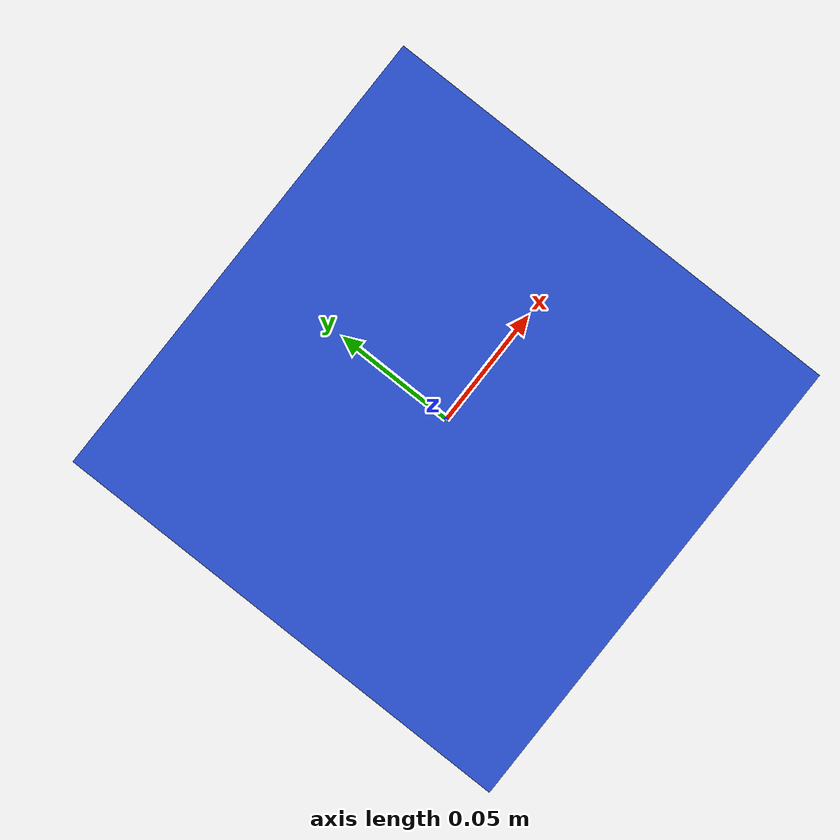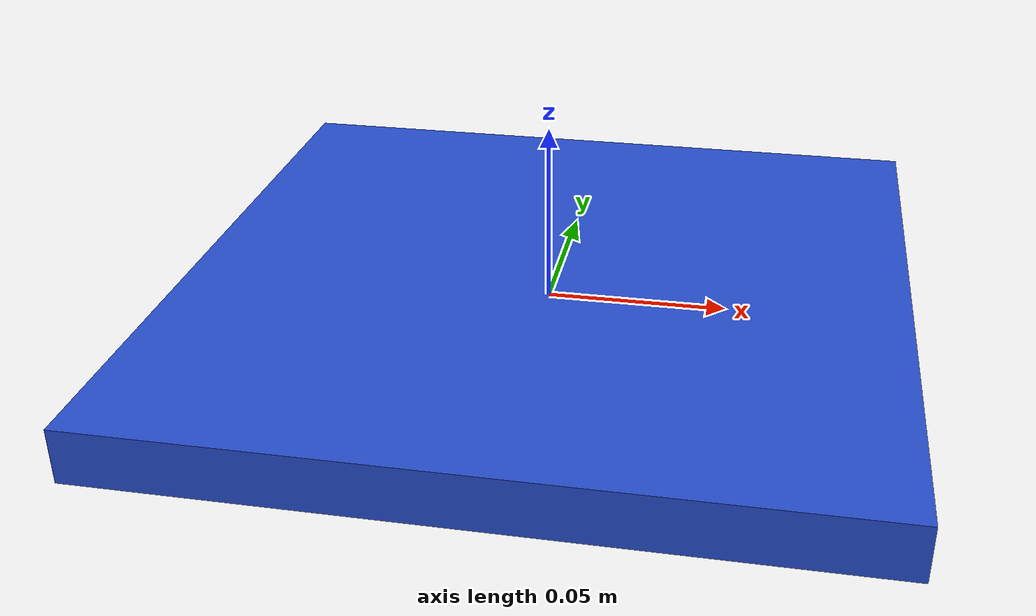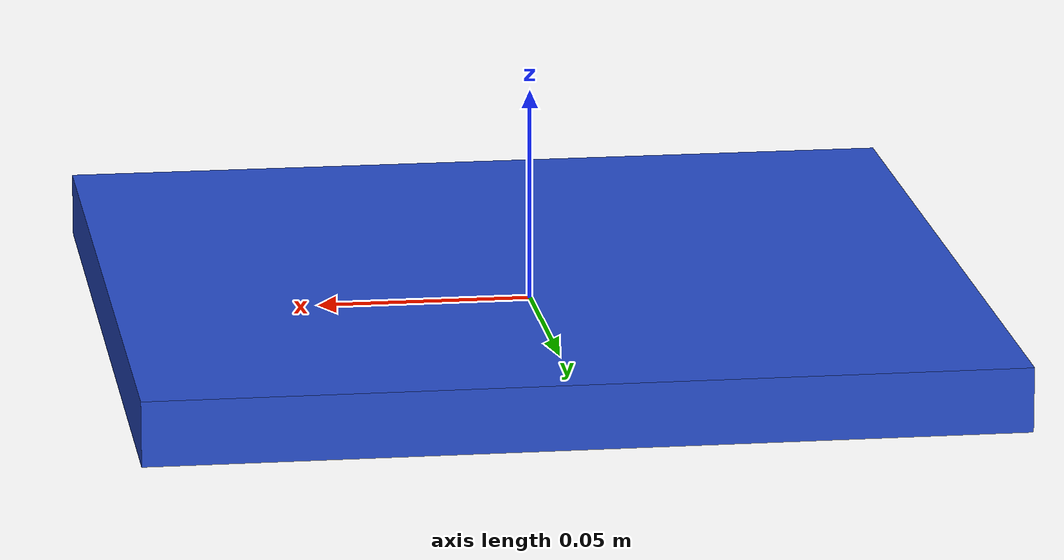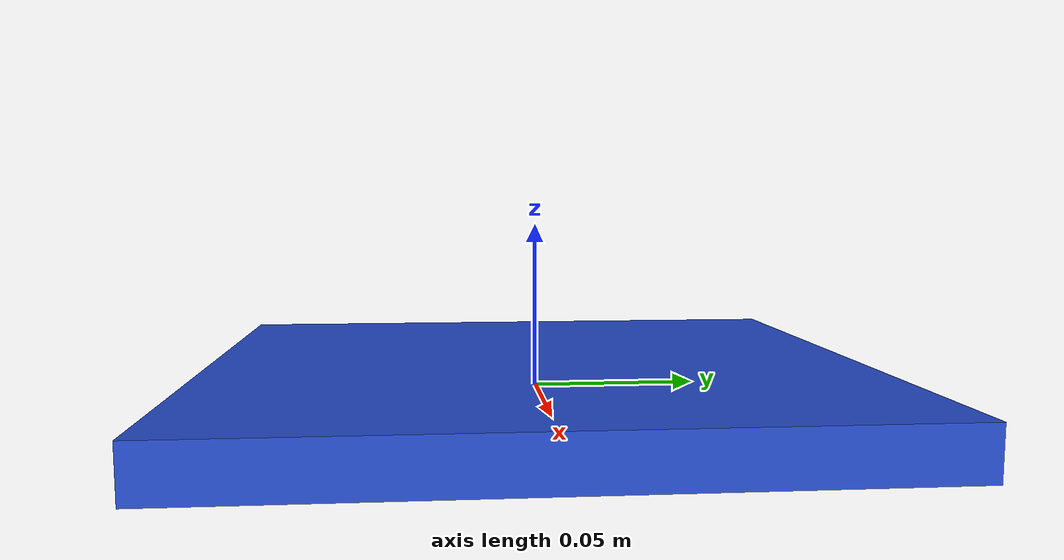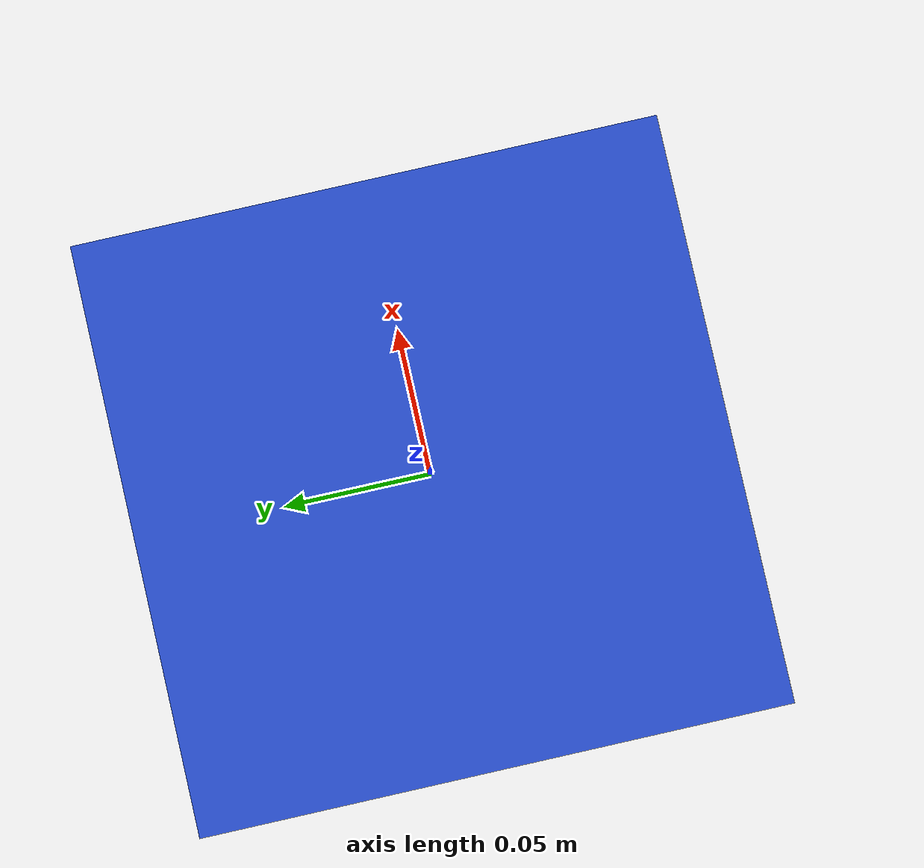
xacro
<?xml version="1.0"?>
<robot name="t_object" xmlns:xacro="http://www.ros.org/wiki/xacro">
  <xacro:arg name="scale" default="1.0"/>
  <xacro:property name="s" value="$(arg scale)"/>

  <link name="object_link">
    <inertial>
      <mass value="${0.05 * s * s * s}"/>
      <inertia ixx="0.0001" ixy="0" ixz="0" iyy="0.0001" iyz="0" izz="0.0001"/>
    </inertial>

    <collision>
      <geometry>
        <box size="${0.2 * s} ${0.2 * s} 0.015"/>
      </geometry>
    </collision>
    <visual>
      <geometry>
        <box size="${0.2 * s} ${0.2 * s} 0.015"/>
      </geometry>
    </visual>
  </link>

  <gazebo reference="object_link">
    <material>Gazebo/Blue</material>
  </gazebo>
</robot>
